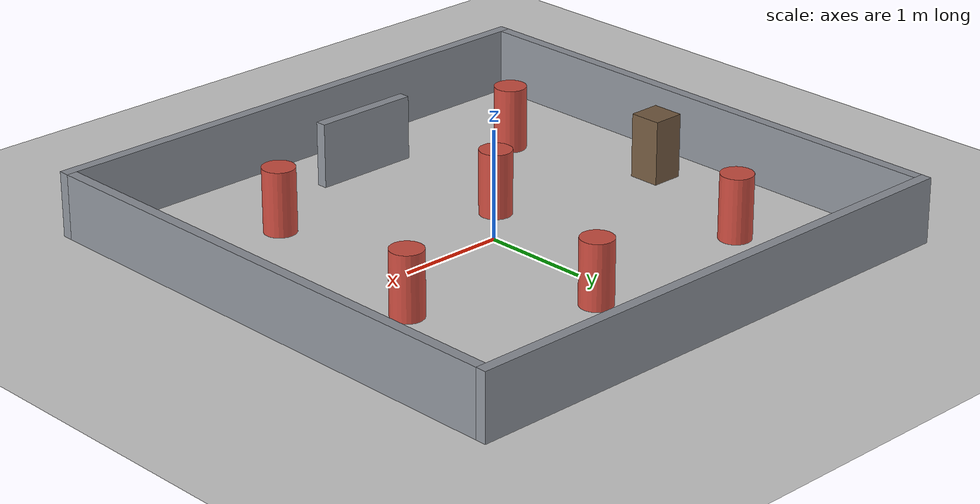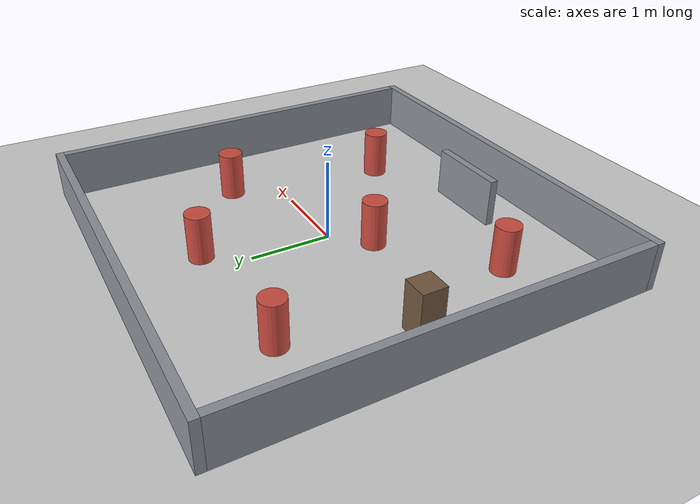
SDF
<?xml version="1.0"?>
<sdf version="1.8">
  <world name="default">
    <!-- SentinelBot Mk II arena: TurtleBot3 world geometry, wrench-driven holonomic base (see mecanum_base_sim) -->
    <physics name="1ms" type="ignored">
      <max_step_size>0.001</max_step_size>
      <real_time_factor>1.0</real_time_factor>
      <real_time_update_rate>1000</real_time_update_rate>
    </physics>
    <plugin filename="gz-sim-physics-system" name="gz::sim::systems::Physics"></plugin>
    <!-- resultant force of the mecanum wheels is applied by mecanum_base_sim through this system -->
    <plugin filename="gz-sim-apply-link-wrench-system" name="gz::sim::systems::ApplyLinkWrench"></plugin>
    <plugin
      filename="gz-sim-user-commands-system"
      name="gz::sim::systems::UserCommands">
    </plugin>
    <plugin
      filename="gz-sim-scene-broadcaster-system"
      name="gz::sim::systems::SceneBroadcaster">
    </plugin>
    <plugin
      filename="gz-sim-sensors-system"
      name="gz::sim::systems::Sensors">
      <render_engine>ogre2</render_engine>
    </plugin>
    <plugin
      filename="gz-sim-imu-system"
      name="gz::sim::systems::Imu">
    </plugin>

    <include>
      <uri>https://fuel.gazebosim.org/1.0/OpenRobotics/models/Ground Plane</uri>
    </include>

    <include>
      <uri>https://fuel.gazebosim.org/1.0/OpenRobotics/models/Sun</uri>
    </include>

    <!-- generated by tools/make_worlds.py: forest -->
    <model name="wall_n"><static>true</static><pose>0.000 2.550 0.300 0 0 0.0000</pose>
      <link name="link">
        <collision name="c"><geometry><box><size>5.200 0.100 0.600</size></box></geometry></collision>
        <visual name="v"><geometry><box><size>5.200 0.100 0.600</size></box></geometry><material><ambient>0.55 0.57 0.60 1</ambient><diffuse>0.55 0.57 0.60 1</diffuse></material></visual>
      </link>
    </model>
    <model name="wall_s"><static>true</static><pose>0.000 -2.550 0.300 0 0 0.0000</pose>
      <link name="link">
        <collision name="c"><geometry><box><size>5.200 0.100 0.600</size></box></geometry></collision>
        <visual name="v"><geometry><box><size>5.200 0.100 0.600</size></box></geometry><material><ambient>0.55 0.57 0.60 1</ambient><diffuse>0.55 0.57 0.60 1</diffuse></material></visual>
      </link>
    </model>
    <model name="wall_e"><static>true</static><pose>2.550 0.000 0.300 0 0 0.0000</pose>
      <link name="link">
        <collision name="c"><geometry><box><size>0.100 5.000 0.600</size></box></geometry></collision>
        <visual name="v"><geometry><box><size>0.100 5.000 0.600</size></box></geometry><material><ambient>0.55 0.57 0.60 1</ambient><diffuse>0.55 0.57 0.60 1</diffuse></material></visual>
      </link>
    </model>
    <model name="wall_w"><static>true</static><pose>-2.550 0.000 0.300 0 0 0.0000</pose>
      <link name="link">
        <collision name="c"><geometry><box><size>0.100 5.000 0.600</size></box></geometry></collision>
        <visual name="v"><geometry><box><size>0.100 5.000 0.600</size></box></geometry><material><ambient>0.55 0.57 0.60 1</ambient><diffuse>0.55 0.57 0.60 1</diffuse></material></visual>
      </link>
    </model>
    <model name="wall_seg"><static>true</static><pose>-0.200 -1.900 0.300 0 0 0.0000</pose>
      <link name="link">
        <collision name="c"><geometry><box><size>1.000 0.100 0.600</size></box></geometry></collision>
        <visual name="v"><geometry><box><size>1.000 0.100 0.600</size></box></geometry><material><ambient>0.55 0.57 0.60 1</ambient><diffuse>0.55 0.57 0.60 1</diffuse></material></visual>
      </link>
    </model>
    <model name="crate"><static>true</static><pose>-2.000 0.000 0.300 0 0 0.0000</pose>
      <link name="link">
        <collision name="c"><geometry><box><size>0.300 0.300 0.600</size></box></geometry></collision>
        <visual name="v"><geometry><box><size>0.300 0.300 0.600</size></box></geometry><material><ambient>0.45 0.35 0.25 1</ambient><diffuse>0.45 0.35 0.25 1</diffuse></material></visual>
      </link>
    </model>
    <model name="column_1"><static>true</static><pose>-1.500 1.400 0.300 0 0 0</pose>
      <link name="link">
        <collision name="c"><geometry><cylinder><radius>0.150</radius><length>0.600</length></cylinder></geometry></collision>
        <visual name="v"><geometry><cylinder><radius>0.150</radius><length>0.600</length></cylinder></geometry><material><ambient>0.80 0.30 0.25 1</ambient><diffuse>0.80 0.30 0.25 1</diffuse></material></visual>
      </link>
    </model>
    <model name="column_2"><static>true</static><pose>0.300 1.500 0.300 0 0 0</pose>
      <link name="link">
        <collision name="c"><geometry><cylinder><radius>0.150</radius><length>0.600</length></cylinder></geometry></collision>
        <visual name="v"><geometry><cylinder><radius>0.150</radius><length>0.600</length></cylinder></geometry><material><ambient>0.80 0.30 0.25 1</ambient><diffuse>0.80 0.30 0.25 1</diffuse></material></visual>
      </link>
    </model>
    <model name="column_3"><static>true</static><pose>1.550 0.600 0.300 0 0 0</pose>
      <link name="link">
        <collision name="c"><geometry><cylinder><radius>0.150</radius><length>0.600</length></cylinder></geometry></collision>
        <visual name="v"><geometry><cylinder><radius>0.150</radius><length>0.600</length></cylinder></geometry><material><ambient>0.80 0.30 0.25 1</ambient><diffuse>0.80 0.30 0.25 1</diffuse></material></visual>
      </link>
    </model>
    <model name="column_4"><static>true</static><pose>1.200 -1.400 0.300 0 0 0</pose>
      <link name="link">
        <collision name="c"><geometry><cylinder><radius>0.150</radius><length>0.600</length></cylinder></geometry></collision>
        <visual name="v"><geometry><cylinder><radius>0.150</radius><length>0.600</length></cylinder></geometry><material><ambient>0.80 0.30 0.25 1</ambient><diffuse>0.80 0.30 0.25 1</diffuse></material></visual>
      </link>
    </model>
    <model name="column_5"><static>true</static><pose>-0.400 -0.400 0.300 0 0 0</pose>
      <link name="link">
        <collision name="c"><geometry><cylinder><radius>0.150</radius><length>0.600</length></cylinder></geometry></collision>
        <visual name="v"><geometry><cylinder><radius>0.150</radius><length>0.600</length></cylinder></geometry><material><ambient>0.80 0.30 0.25 1</ambient><diffuse>0.80 0.30 0.25 1</diffuse></material></visual>
      </link>
    </model>
    <model name="column_6"><static>true</static><pose>-1.550 -1.400 0.300 0 0 0</pose>
      <link name="link">
        <collision name="c"><geometry><cylinder><radius>0.150</radius><length>0.600</length></cylinder></geometry></collision>
        <visual name="v"><geometry><cylinder><radius>0.150</radius><length>0.600</length></cylinder></geometry><material><ambient>0.80 0.30 0.25 1</ambient><diffuse>0.80 0.30 0.25 1</diffuse></material></visual>
      </link>
    </model>
  </world>
</sdf>
